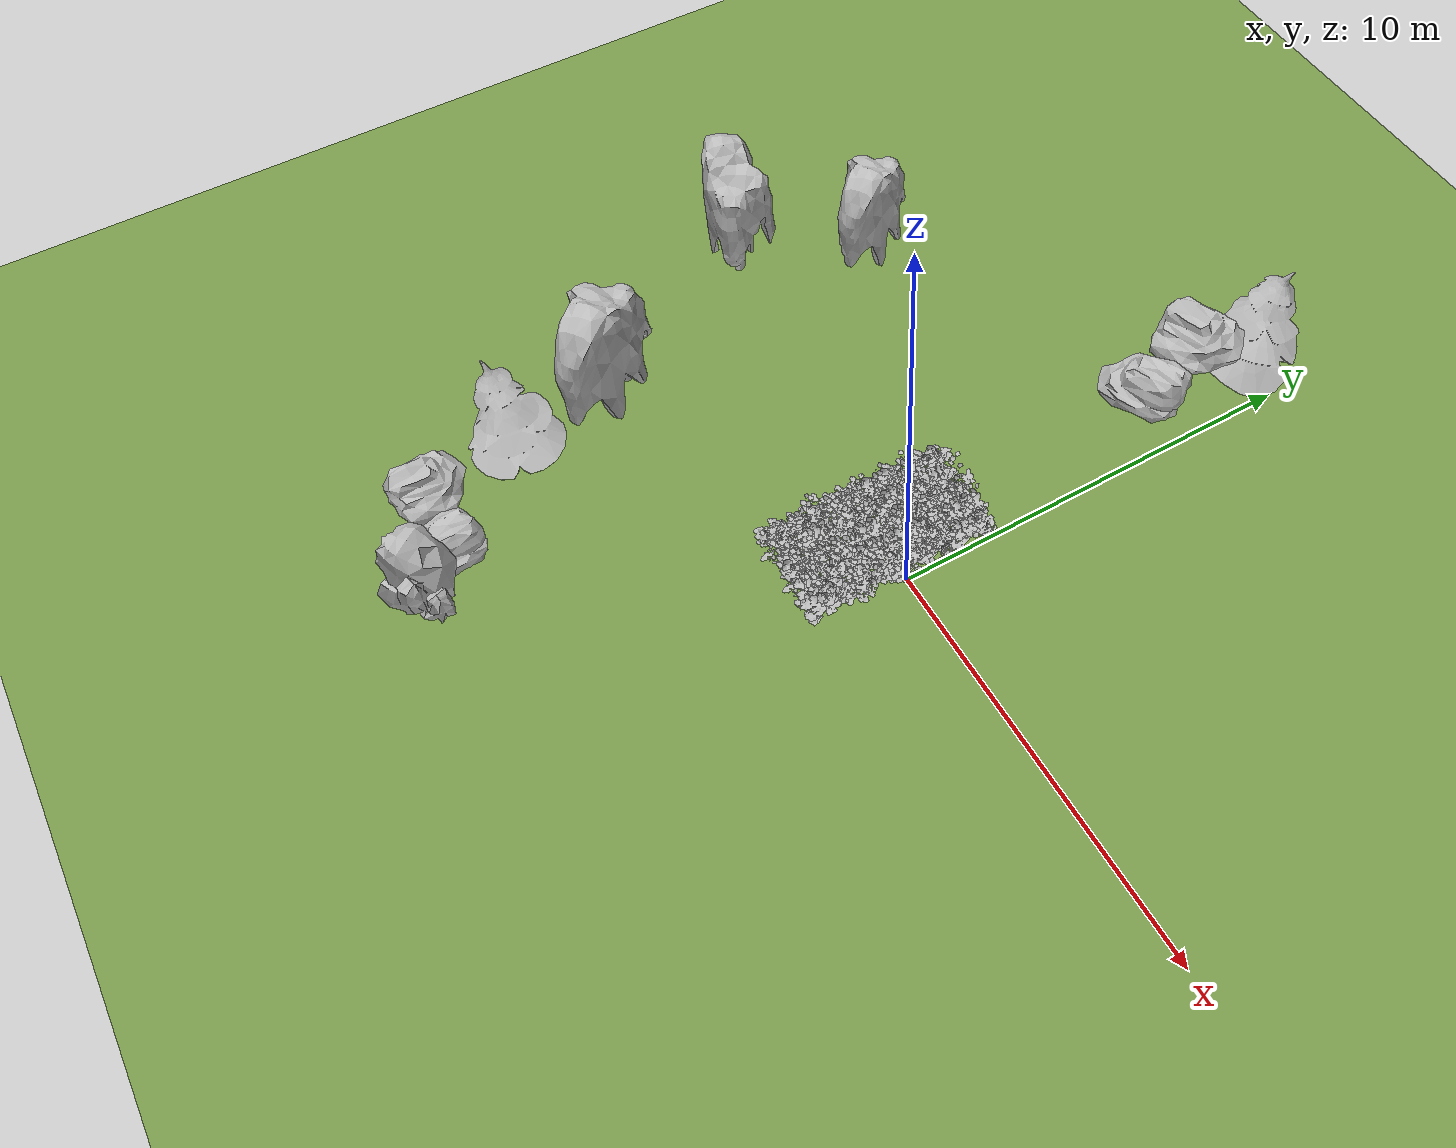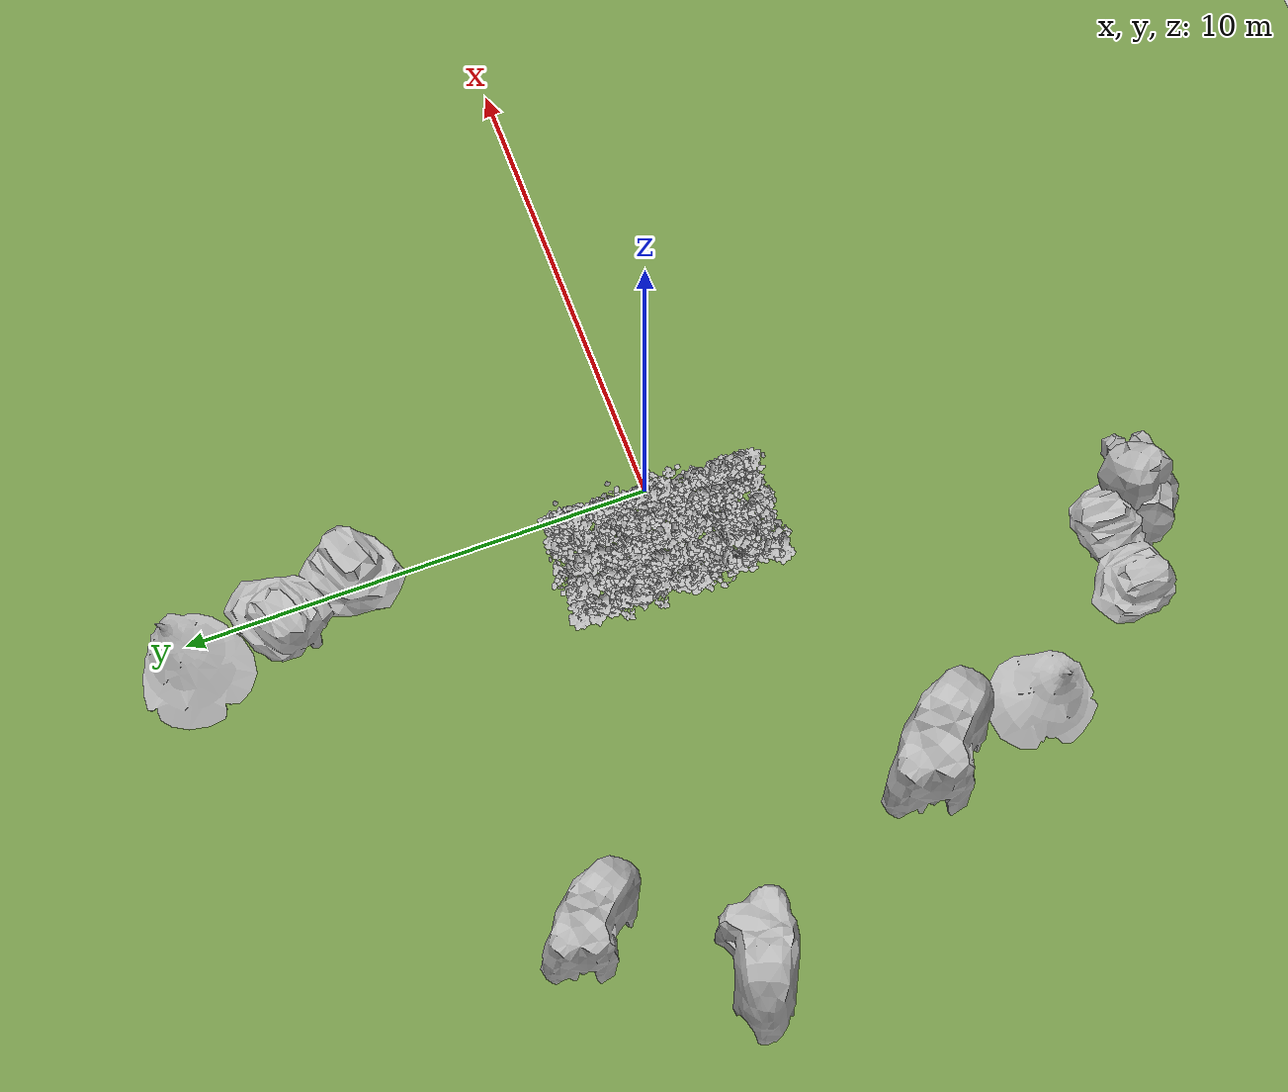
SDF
<sdf version="1.9">
 <world name="soybean_farm">
  <model name="grass_ground">
   <static>true</static>
   <link name="link">
    <collision name="collision">
     <geometry><plane><normal>0 0 1</normal><size>40.0 40.0</size></plane></geometry>
    </collision>
    <visual name="visual">
     <geometry><plane><normal>0 0 1</normal><size>40.0 40.0</size></plane></geometry>
     <material>
      <ambient>0.25 0.35 0.18 1</ambient>
      <diffuse>0.45 0.58 0.28 1</diffuse>
      <specular>0.05 0.05 0.05 1</specular>
      <pbr>
       <metal>
        <albedo_map>ground/grass_color_1k.jpg</albedo_map>
        <roughness>0.95</roughness>
        <metalness>0.0</metalness>
       </metal>
      </pbr>
     </material>
    </visual>
   </link>
  </model>
  <model name="tree_01">
   <static>true</static>
   <pose>-4.73 -9.23 0 1.5708 0 4.90</pose>
   <link name="base_link">
    <visual name="visual">
     <geometry>
      <mesh><uri>models/tree_birch/meshes/tree_birch.obj</uri><scale>0.93 0.93 0.93</scale></mesh>
     </geometry>
    </visual>
   </link>
  </model>
  <model name="tree_03">
   <static>true</static>
   <pose>-7.45 -5.83 0 1.5708 0 1.24</pose>
   <link name="base_link">
    <visual name="visual">
     <geometry>
      <mesh><uri>models/tree_pine/meshes/tree_pine.obj</uri><scale>1.14 1.14 1.14</scale></mesh>
     </geometry>
    </visual>
   </link>
  </model>
  <model name="tree_07">
   <static>true</static>
   <pose>-9.03 4.89 0 1.5708 0 3.72</pose>
   <link name="base_link">
    <visual name="visual">
     <geometry>
      <mesh><uri>models/tree_willow/meshes/tree_willow.obj</uri><scale>1.04 1.04 1.04</scale></mesh>
     </geometry>
    </visual>
   </link>
  </model>
  <model name="tree_08">
   <static>true</static>
   <pose>-0.82 7.49 0 1.5708 0 0.36</pose>
   <link name="base_link">
    <visual name="visual">
     <geometry>
      <mesh><uri>models/tree_common/meshes/tree_common.obj</uri><scale>1.23 1.23 1.23</scale></mesh>
     </geometry>
    </visual>
   </link>
  </model>
  <model name="tree_11">
   <static>true</static>
   <pose>-10.14 1.18 0 1.5708 0 1.18</pose>
   <link name="base_link">
    <visual name="visual">
     <geometry>
      <mesh><uri>models/tree_willow/meshes/tree_willow.obj</uri><scale>1.14 1.14 1.14</scale></mesh>
     </geometry>
    </visual>
   </link>
  </model>
  <model name="tree_12">
   <static>true</static>
   <pose>-0.84 10.08 0 1.5708 0 5.10</pose>
   <link name="base_link">
    <visual name="visual">
     <geometry>
      <mesh><uri>models/tree_pine/meshes/tree_pine.obj</uri><scale>1.23 1.23 1.23</scale></mesh>
     </geometry>
    </visual>
   </link>
  </model>
  <model name="tree_13">
   <static>true</static>
   <pose>-5.57 -8.27 0 1.5708 0 1.56</pose>
   <link name="base_link">
    <visual name="visual">
     <geometry>
      <mesh><uri>models/tree_common/meshes/tree_common.obj</uri><scale>1.08 1.08 1.08</scale></mesh>
     </geometry>
    </visual>
   </link>
  </model>
  <model name="tree_15">
   <static>true</static>
   <pose>-8.14 -2.67 0 1.5708 0 3.76</pose>
   <link name="base_link">
    <visual name="visual">
     <geometry>
      <mesh><uri>models/tree_willow/meshes/tree_willow.obj</uri><scale>1.22 1.22 1.22</scale></mesh>
     </geometry>
    </visual>
   </link>
  </model>
  <model name="soybean_000">
   <static>true</static>
   <pose>-2.278 -2.188 0 0 0 1.402</pose>
   <link name="base_link">
    <visual name="visual">
     <geometry><mesh><uri>models/soybean_plant/meshes/soybean_40d.obj</uri></mesh></geometry>
    </visual>
   </link>
  </model>
  <model name="soybean_001">
   <static>true</static>
   <pose>-2.239 -2.001 0 0 0 0.546</pose>
   <link name="base_link">
    <visual name="visual">
     <geometry><mesh><uri>models/soybean_plant/meshes/soybean_50d.obj</uri></mesh></geometry>
    </visual>
   </link>
  </model>
  <model name="soybean_002">
   <static>true</static>
   <pose>-2.278 -1.892 0 0 0 3.175</pose>
   <link name="base_link">
    <visual name="visual">
     <geometry><mesh><uri>models/soybean_plant/meshes/soybean_40d.obj</uri></mesh></geometry>
    </visual>
   </link>
  </model>
  <model name="soybean_003">
   <static>true</static>
   <pose>-2.268 -1.716 0 0 0 3.424</pose>
   <link name="base_link">
    <visual name="visual">
     <geometry><mesh><uri>models/soybean_plant/meshes/soybean_30d.obj</uri></mesh></geometry>
    </visual>
   </link>
  </model>
  <model name="soybean_004">
   <static>true</static>
   <pose>-2.245 -1.556 0 0 0 0.041</pose>
   <link name="base_link">
    <visual name="visual">
     <geometry><mesh><uri>models/soybean_plant/meshes/soybean_40d.obj</uri></mesh></geometry>
    </visual>
   </link>
  </model>
  <model name="soybean_005">
   <static>true</static>
   <pose>-2.238 -1.435 0 0 0 0.977</pose>
   <link name="base_link">
    <visual name="visual">
     <geometry><mesh><uri>models/soybean_plant/meshes/soybean_50d.obj</uri></mesh></geometry>
    </visual>
   </link>
  </model>
  <model name="soybean_006">
   <static>true</static>
   <pose>-2.260 -1.299 0 0 0 0.608</pose>
   <link name="base_link">
    <visual name="visual">
     <geometry><mesh><uri>models/soybean_plant/meshes/soybean_50d.obj</uri></mesh></geometry>
    </visual>
   </link>
  </model>
  <model name="soybean_007">
   <static>true</static>
   <pose>-2.244 -1.107 0 0 0 4.585</pose>
   <link name="base_link">
    <visual name="visual">
     <geometry><mesh><uri>models/soybean_plant/meshes/soybean_50d.obj</uri></mesh></geometry>
    </visual>
   </link>
  </model>
  <model name="soybean_008">
   <static>true</static>
   <pose>-2.222 -0.982 0 0 0 3.469</pose>
   <link name="base_link">
    <visual name="visual">
     <geometry><mesh><uri>models/soybean_plant/meshes/soybean_40d.obj</uri></mesh></geometry>
    </visual>
   </link>
  </model>
  <model name="soybean_009">
   <static>true</static>
   <pose>-2.243 -0.803 0 0 0 3.628</pose>
   <link name="base_link">
    <visual name="visual">
     <geometry><mesh><uri>models/soybean_plant/meshes/soybean_50d.obj</uri></mesh></geometry>
    </visual>
   </link>
  </model>
  <model name="soybean_010">
   <static>true</static>
   <pose>-2.277 -0.691 0 0 0 1.818</pose>
   <link name="base_link">
    <visual name="visual">
     <geometry><mesh><uri>models/soybean_plant/meshes/soybean_50d.obj</uri></mesh></geometry>
    </visual>
   </link>
  </model>
  <model name="soybean_011">
   <static>true</static>
   <pose>-2.266 -0.549 0 0 0 1.747</pose>
   <link name="base_link">
    <visual name="visual">
     <geometry><mesh><uri>models/soybean_plant/meshes/soybean_30d.obj</uri></mesh></geometry>
    </visual>
   </link>
  </model>
  <model name="soybean_012">
   <static>true</static>
   <pose>-2.258 -0.383 0 0 0 1.316</pose>
   <link name="base_link">
    <visual name="visual">
     <geometry><mesh><uri>models/soybean_plant/meshes/soybean_40d.obj</uri></mesh></geometry>
    </visual>
   </link>
  </model>
  <model name="soybean_013">
   <static>true</static>
   <pose>-2.224 -0.216 0 0 0 3.827</pose>
   <link name="base_link">
    <visual name="visual">
     <geometry><mesh><uri>models/soybean_plant/meshes/soybean_40d.obj</uri></mesh></geometry>
    </visual>
   </link>
  </model>
  <model name="soybean_014">
   <static>true</static>
   <pose>-2.236 -0.095 0 0 0 2.384</pose>
   <link name="base_link">
    <visual name="visual">
     <geometry><mesh><uri>models/soybean_plant/meshes/soybean_40d.obj</uri></mesh></geometry>
    </visual>
   </link>
  </model>
  <model name="soybean_015">
   <static>true</static>
   <pose>-2.242 0.078 0 0 0 4.302</pose>
   <link name="base_link">
    <visual name="visual">
     <geometry><mesh><uri>models/soybean_plant/meshes/soybean_50d.obj</uri></mesh></geometry>
    </visual>
   </link>
  </model>
  <model name="soybean_016">
   <static>true</static>
   <pose>-2.233 0.209 0 0 0 0.202</pose>
   <link name="base_link">
    <visual name="visual">
     <geometry><mesh><uri>models/soybean_plant/meshes/soybean_50d.obj</uri></mesh></geometry>
    </visual>
   </link>
  </model>
  <model name="soybean_017">
   <static>true</static>
   <pose>-2.264 0.358 0 0 0 5.924</pose>
   <link name="base_link">
    <visual name="visual">
     <geometry><mesh><uri>models/soybean_plant/meshes/soybean_40d.obj</uri></mesh></geometry>
    </visual>
   </link>
  </model>
  <model name="soybean_018">
   <static>true</static>
   <pose>-2.261 0.534 0 0 0 2.486</pose>
   <link name="base_link">
    <visual name="visual">
     <geometry><mesh><uri>models/soybean_plant/meshes/soybean_50d.obj</uri></mesh></geometry>
    </visual>
   </link>
  </model>
  <model name="soybean_019">
   <static>true</static>
   <pose>-2.252 0.661 0 0 0 1.550</pose>
   <link name="base_link">
    <visual name="visual">
     <geometry><mesh><uri>models/soybean_plant/meshes/soybean_50d.obj</uri></mesh></geometry>
    </visual>
   </link>
  </model>
  <model name="soybean_020">
   <static>true</static>
   <pose>-2.264 0.830 0 0 0 5.641</pose>
   <link name="base_link">
    <visual name="visual">
     <geometry><mesh><uri>models/soybean_plant/meshes/soybean_40d.obj</uri></mesh></geometry>
    </visual>
   </link>
  </model>
  <model name="soybean_021">
   <static>true</static>
   <pose>-2.267 1.005 0 0 0 3.201</pose>
   <link name="base_link">
    <visual name="visual">
     <geometry><mesh><uri>models/soybean_plant/meshes/soybean_40d.obj</uri></mesh></geometry>
    </visual>
   </link>
  </model>
  <model name="soybean_022">
   <static>true</static>
   <pose>-2.277 1.102 0 0 0 3.942</pose>
   <link name="base_link">
    <visual name="visual">
     <geometry><mesh><uri>models/soybean_plant/meshes/soybean_30d.obj</uri></mesh></geometry>
    </visual>
   </link>
  </model>
  <model name="soybean_023">
   <static>true</static>
   <pose>-2.255 1.249 0 0 0 2.398</pose>
   <link name="base_link">
    <visual name="visual">
     <geometry><mesh><uri>models/soybean_plant/meshes/soybean_50d.obj</uri></mesh></geometry>
    </visual>
   </link>
  </model>
  <model name="soybean_024">
   <static>true</static>
   <pose>-2.248 1.453 0 0 0 5.408</pose>
   <link name="base_link">
    <visual name="visual">
     <geometry><mesh><uri>models/soybean_plant/meshes/soybean_50d.obj</uri></mesh></geometry>
    </visual>
   </link>
  </model>
  <model name="soybean_025">
   <static>true</static>
   <pose>-2.237 1.586 0 0 0 3.374</pose>
   <link name="base_link">
    <visual name="visual">
     <geometry><mesh><uri>models/soybean_plant/meshes/soybean_30d.obj</uri></mesh></geometry>
    </visual>
   </link>
  </model>
  <model name="soybean_026">
   <static>true</static>
   <pose>-2.242 1.702 0 0 0 2.732</pose>
   <link name="base_link">
    <visual name="visual">
     <geometry><mesh><uri>models/soybean_plant/meshes/soybean_40d.obj</uri></mesh></geometry>
    </visual>
   </link>
  </model>
  <model name="soybean_027">
   <static>true</static>
   <pose>-2.223 1.898 0 0 0 1.655</pose>
   <link name="base_link">
    <visual name="visual">
     <geometry><mesh><uri>models/soybean_plant/meshes/soybean_40d.obj</uri></mesh></geometry>
    </visual>
   </link>
  </model>
  <model name="soybean_028">
   <static>true</static>
   <pose>-2.269 2.050 0 0 0 5.470</pose>
   <link name="base_link">
    <visual name="visual">
     <geometry><mesh><uri>models/soybean_plant/meshes/soybean_40d.obj</uri></mesh></geometry>
    </visual>
   </link>
  </model>
  <model name="soybean_029">
   <static>true</static>
   <pose>-2.242 2.182 0 0 0 0.960</pose>
   <link name="base_link">
    <visual name="visual">
     <geometry><mesh><uri>models/soybean_plant/meshes/soybean_40d.obj</uri></mesh></geometry>
    </visual>
   </link>
  </model>
  <model name="soybean_030">
   <static>true</static>
   <pose>-1.748 -2.158 0 0 0 3.332</pose>
   <link name="base_link">
    <visual name="visual">
     <geometry><mesh><uri>models/soybean_plant/meshes/soybean_50d.obj</uri></mesh></geometry>
    </visual>
   </link>
  </model>
  <model name="soybean_031">
   <static>true</static>
   <pose>-1.761 -2.054 0 0 0 5.838</pose>
   <link name="base_link">
    <visual name="visual">
     <geometry><mesh><uri>models/soybean_plant/meshes/soybean_30d.obj</uri></mesh></geometry>
    </visual>
   </link>
  </model>
  <model name="soybean_032">
   <static>true</static>
   <pose>-1.730 -1.887 0 0 0 0.364</pose>
   <link name="base_link">
    <visual name="visual">
     <geometry><mesh><uri>models/soybean_plant/meshes/soybean_50d.obj</uri></mesh></geometry>
    </visual>
   </link>
  </model>
  <model name="soybean_033">
   <static>true</static>
   <pose>-1.723 -1.750 0 0 0 3.054</pose>
   <link name="base_link">
    <visual name="visual">
     <geometry><mesh><uri>models/soybean_plant/meshes/soybean_50d.obj</uri></mesh></geometry>
    </visual>
   </link>
  </model>
  <model name="soybean_034">
   <static>true</static>
   <pose>-1.734 -1.559 0 0 0 0.807</pose>
   <link name="base_link">
    <visual name="visual">
     <geometry><mesh><uri>models/soybean_plant/meshes/soybean_30d.obj</uri></mesh></geometry>
    </visual>
   </link>
  </model>
  <model name="soybean_035">
   <static>true</static>
   <pose>-1.747 -1.439 0 0 0 5.482</pose>
   <link name="base_link">
    <visual name="visual">
     <geometry><mesh><uri>models/soybean_plant/meshes/soybean_40d.obj</uri></mesh></geometry>
    </visual>
   </link>
  </model>
  <model name="soybean_036">
   <static>true</static>
   <pose>-1.767 -1.273 0 0 0 4.586</pose>
   <link name="base_link">
    <visual name="visual">
     <geometry><mesh><uri>models/soybean_plant/meshes/soybean_40d.obj</uri></mesh></geometry>
    </visual>
   </link>
  </model>
  <model name="soybean_037">
   <static>true</static>
   <pose>-1.761 -1.095 0 0 0 4.083</pose>
   <link name="base_link">
    <visual name="visual">
     <geometry><mesh><uri>models/soybean_plant/meshes/soybean_40d.obj</uri></mesh></geometry>
    </visual>
   </link>
  </model>
  <model name="soybean_038">
   <static>true</static>
   <pose>-1.749 -0.998 0 0 0 1.412</pose>
   <link name="base_link">
    <visual name="visual">
     <geometry><mesh><uri>models/soybean_plant/meshes/soybean_40d.obj</uri></mesh></geometry>
    </visual>
   </link>
  </model>
  <model name="soybean_039">
   <static>true</static>
   <pose>-1.745 -0.841 0 0 0 1.384</pose>
   <link name="base_link">
    <visual name="visual">
     <geometry><mesh><uri>models/soybean_plant/meshes/soybean_40d.obj</uri></mesh></geometry>
    </visual>
   </link>
  </model>
  <model name="soybean_040">
   <static>true</static>
   <pose>-1.742 -0.691 0 0 0 5.689</pose>
   <link name="base_link">
    <visual name="visual">
     <geometry><mesh><uri>models/soybean_plant/meshes/soybean_30d.obj</uri></mesh></geometry>
    </visual>
   </link>
  </model>
  <model name="soybean_041">
   <static>true</static>
   <pose>-1.776 -0.541 0 0 0 4.203</pose>
   <link name="base_link">
    <visual name="visual">
     <geometry><mesh><uri>models/soybean_plant/meshes/soybean_50d.obj</uri></mesh></geometry>
    </visual>
   </link>
  </model>
  <model name="soybean_042">
   <static>true</static>
   <pose>-1.772 -0.349 0 0 0 3.588</pose>
   <link name="base_link">
    <visual name="visual">
     <geometry><mesh><uri>models/soybean_plant/meshes/soybean_40d.obj</uri></mesh></geometry>
    </visual>
   </link>
  </model>
  <model name="soybean_043">
   <static>true</static>
   <pose>-1.733 -0.207 0 0 0 1.196</pose>
   <link name="base_link">
    <visual name="visual">
     <geometry><mesh><uri>models/soybean_plant/meshes/soybean_40d.obj</uri></mesh></geometry>
    </visual>
   </link>
  </model>
  <model name="soybean_044">
   <static>true</static>
   <pose>-1.754 -0.080 0 0 0 2.934</pose>
   <link name="base_link">
    <visual name="visual">
     <geometry><mesh><uri>models/soybean_plant/meshes/soybean_30d.obj</uri></mesh></geometry>
    </visual>
   </link>
  </model>
  <model name="soybean_045">
   <static>true</static>
   <pose>-1.740 0.104 0 0 0 0.618</pose>
   <link name="base_link">
    <visual name="visual">
     <geometry><mesh><uri>models/soybean_plant/meshes/soybean_50d.obj</uri></mesh></geometry>
    </visual>
   </link>
  </model>
  <model name="soybean_046">
   <static>true</static>
   <pose>-1.760 0.247 0 0 0 1.562</pose>
   <link name="base_link">
    <visual name="visual">
     <geometry><mesh><uri>models/soybean_plant/meshes/soybean_40d.obj</uri></mesh></geometry>
    </visual>
   </link>
  </model>
  <model name="soybean_047">
   <static>true</static>
   <pose>-1.753 0.370 0 0 0 1.750</pose>
   <link name="base_link">
    <visual name="visual">
     <geometry><mesh><uri>models/soybean_plant/meshes/soybean_40d.obj</uri></mesh></geometry>
    </visual>
   </link>
  </model>
  <model name="soybean_048">
   <static>true</static>
   <pose>-1.725 0.522 0 0 0 5.412</pose>
   <link name="base_link">
    <visual name="visual">
     <geometry><mesh><uri>models/soybean_plant/meshes/soybean_40d.obj</uri></mesh></geometry>
    </visual>
   </link>
  </model>
  <model name="soybean_049">
   <static>true</static>
   <pose>-1.777 0.705 0 0 0 5.253</pose>
   <link name="base_link">
    <visual name="visual">
     <geometry><mesh><uri>models/soybean_plant/meshes/soybean_40d.obj</uri></mesh></geometry>
    </visual>
   </link>
  </model>
  <model name="soybean_050">
   <static>true</static>
   <pose>-1.724 0.846 0 0 0 1.045</pose>
   <link name="base_link">
    <visual name="visual">
     <geometry><mesh><uri>models/soybean_plant/meshes/soybean_50d.obj</uri></mesh></geometry>
    </visual>
   </link>
  </model>
  <model name="soybean_051">
   <static>true</static>
   <pose>-1.767 0.969 0 0 0 0.368</pose>
   <link name="base_link">
    <visual name="visual">
     <geometry><mesh><uri>models/soybean_plant/meshes/soybean_40d.obj</uri></mesh></geometry>
    </visual>
   </link>
  </model>
  <model name="soybean_052">
   <static>true</static>
   <pose>-1.721 1.111 0 0 0 4.926</pose>
   <link name="base_link">
    <visual name="visual">
     <geometry><mesh><uri>models/soybean_plant/meshes/soybean_40d.obj</uri></mesh></geometry>
    </visual>
   </link>
  </model>
  <model name="soybean_053">
   <static>true</static>
   <pose>-1.755 1.302 0 0 0 6.254</pose>
   <link name="base_link">
    <visual name="visual">
     <geometry><mesh><uri>models/soybean_plant/meshes/soybean_40d.obj</uri></mesh></geometry>
    </visual>
   </link>
  </model>
  <model name="soybean_054">
   <static>true</static>
   <pose>-1.737 1.404 0 0 0 1.864</pose>
   <link name="base_link">
    <visual name="visual">
     <geometry><mesh><uri>models/soybean_plant/meshes/soybean_40d.obj</uri></mesh></geometry>
    </visual>
   </link>
  </model>
  <model name="soybean_055">
   <static>true</static>
   <pose>-1.745 1.578 0 0 0 4.700</pose>
   <link name="base_link">
    <visual name="visual">
     <geometry><mesh><uri>models/soybean_plant/meshes/soybean_50d.obj</uri></mesh></geometry>
    </visual>
   </link>
  </model>
  <model name="soybean_056">
   <static>true</static>
   <pose>-1.745 1.725 0 0 0 5.358</pose>
   <link name="base_link">
    <visual name="visual">
     <geometry><mesh><uri>models/soybean_plant/meshes/soybean_30d.obj</uri></mesh></geometry>
    </visual>
   </link>
  </model>
  <model name="soybean_057">
   <static>true</static>
   <pose>-1.722 1.850 0 0 0 1.168</pose>
   <link name="base_link">
    <visual name="visual">
     <geometry><mesh><uri>models/soybean_plant/meshes/soybean_40d.obj</uri></mesh></geometry>
    </visual>
   </link>
  </model>
  <model name="soybean_058">
   <static>true</static>
   <pose>-1.739 2.009 0 0 0 0.753</pose>
   <link name="base_link">
    <visual name="visual">
     <geometry><mesh><uri>models/soybean_plant/meshes/soybean_40d.obj</uri></mesh></geometry>
    </visual>
   </link>
  </model>
  <model name="soybean_059">
   <static>true</static>
   <pose>-1.765 2.181 0 0 0 3.892</pose>
   <link name="base_link">
    <visual name="visual">
     <geometry><mesh><uri>models/soybean_plant/meshes/soybean_50d.obj</uri></mesh></geometry>
    </visual>
   </link>
  </model>
  <model name="soybean_060">
   <static>true</static>
   <pose>-1.245 -2.174 0 0 0 5.873</pose>
   <link name="base_link">
    <visual name="visual">
     <geometry><mesh><uri>models/soybean_plant/meshes/soybean_40d.obj</uri></mesh></geometry>
    </visual>
   </link>
  </model>
  <model name="soybean_061">
   <static>true</static>
   <pose>-1.237 -2.041 0 0 0 2.487</pose>
   <link name="base_link">
    <visual name="visual">
     <geometry><mesh><uri>models/soybean_plant/meshes/soybean_40d.obj</uri></mesh></geometry>
    </visual>
   </link>
  </model>
  <model name="soybean_062">
   <static>true</static>
   <pose>-1.262 -1.886 0 0 0 4.724</pose>
   <link name="base_link">
    <visual name="visual">
     <geometry><mesh><uri>models/soybean_plant/meshes/soybean_50d.obj</uri></mesh></geometry>
    </visual>
   </link>
  </model>
  <model name="soybean_063">
   <static>true</static>
   <pose>-1.253 -1.695 0 0 0 6.259</pose>
   <link name="base_link">
    <visual name="visual">
     <geometry><mesh><uri>models/soybean_plant/meshes/soybean_30d.obj</uri></mesh></geometry>
    </visual>
   </link>
  </model>
  <model name="soybean_064">
   <static>true</static>
   <pose>-1.267 -1.589 0 0 0 5.864</pose>
   <link name="base_link">
    <visual name="visual">
     <geometry><mesh><uri>models/soybean_plant/meshes/soybean_30d.obj</uri></mesh></geometry>
    </visual>
   </link>
  </model>
  <model name="soybean_065">
   <static>true</static>
   <pose>-1.227 -1.433 0 0 0 0.991</pose>
   <link name="base_link">
    <visual name="visual">
     <geometry><mesh><uri>models/soybean_plant/meshes/soybean_50d.obj</uri></mesh></geometry>
    </visual>
   </link>
  </model>
  <model name="soybean_066">
   <static>true</static>
   <pose>-1.238 -1.268 0 0 0 6.203</pose>
   <link name="base_link">
    <visual name="visual">
     <geometry><mesh><uri>models/soybean_plant/meshes/soybean_50d.obj</uri></mesh></geometry>
    </visual>
   </link>
  </model>
  <model name="soybean_067">
   <static>true</static>
   <pose>-1.280 -1.106 0 0 0 1.881</pose>
   <link name="base_link">
    <visual name="visual">
     <geometry><mesh><uri>models/soybean_plant/meshes/soybean_50d.obj</uri></mesh></geometry>
    </visual>
   </link>
  </model>
  <model name="soybean_068">
   <static>true</static>
   <pose>-1.224 -0.997 0 0 0 0.725</pose>
   <link name="base_link">
    <visual name="visual">
     <geometry><mesh><uri>models/soybean_plant/meshes/soybean_50d.obj</uri></mesh></geometry>
    </visual>
   </link>
  </model>
  <model name="soybean_069">
   <static>true</static>
   <pose>-1.247 -0.839 0 0 0 3.800</pose>
   <link name="base_link">
    <visual name="visual">
     <geometry><mesh><uri>models/soybean_plant/meshes/soybean_30d.obj</uri></mesh></geometry>
    </visual>
   </link>
  </model>
  <model name="soybean_070">
   <static>true</static>
   <pose>-1.268 -0.667 0 0 0 1.659</pose>
   <link name="base_link">
    <visual name="visual">
     <geometry><mesh><uri>models/soybean_plant/meshes/soybean_50d.obj</uri></mesh></geometry>
    </visual>
   </link>
  </model>
  <model name="soybean_071">
   <static>true</static>
   <pose>-1.226 -0.504 0 0 0 0.580</pose>
   <link name="base_link">
    <visual name="visual">
     <geometry><mesh><uri>models/soybean_plant/meshes/soybean_40d.obj</uri></mesh></geometry>
    </visual>
   </link>
  </model>
  <model name="soybean_072">
   <static>true</static>
   <pose>-1.263 -0.405 0 0 0 4.845</pose>
   <link name="base_link">
    <visual name="visual">
     <geometry><mesh><uri>models/soybean_plant/meshes/soybean_40d.obj</uri></mesh></geometry>
    </visual>
   </link>
  </model>
  <model name="soybean_073">
   <static>true</static>
   <pose>-1.264 -0.211 0 0 0 3.466</pose>
   <link name="base_link">
    <visual name="visual">
     <geometry><mesh><uri>models/soybean_plant/meshes/soybean_40d.obj</uri></mesh></geometry>
    </visual>
   </link>
  </model>
  <model name="soybean_074">
   <static>true</static>
   <pose>-1.279 -0.100 0 0 0 5.549</pose>
   <link name="base_link">
    <visual name="visual">
     <geometry><mesh><uri>models/soybean_plant/meshes/soybean_40d.obj</uri></mesh></geometry>
    </visual>
   </link>
  </model>
  <model name="soybean_075">
   <static>true</static>
   <pose>-1.247 0.095 0 0 0 3.660</pose>
   <link name="base_link">
    <visual name="visual">
     <geometry><mesh><uri>models/soybean_plant/meshes/soybean_50d.obj</uri></mesh></geometry>
    </visual>
   </link>
  </model>
  <model name="soybean_076">
   <static>true</static>
   <pose>-1.272 0.213 0 0 0 5.648</pose>
   <link name="base_link">
    <visual name="visual">
     <geometry><mesh><uri>models/soybean_plant/meshes/soybean_30d.obj</uri></mesh></geometry>
    </visual>
   </link>
  </model>
  <model name="soybean_077">
   <static>true</static>
   <pose>-1.228 0.399 0 0 0 1.320</pose>
   <link name="base_link">
    <visual name="visual">
     <geometry><mesh><uri>models/soybean_plant/meshes/soybean_50d.obj</uri></mesh></geometry>
    </visual>
   </link>
  </model>
  <model name="soybean_078">
   <static>true</static>
   <pose>-1.274 0.542 0 0 0 5.555</pose>
   <link name="base_link">
    <visual name="visual">
     <geometry><mesh><uri>models/soybean_plant/meshes/soybean_40d.obj</uri></mesh></geometry>
    </visual>
   </link>
  </model>
  <model name="soybean_079">
   <static>true</static>
   <pose>-1.243 0.654 0 0 0 5.843</pose>
   <link name="base_link">
    <visual name="visual">
     <geometry><mesh><uri>models/soybean_plant/meshes/soybean_40d.obj</uri></mesh></geometry>
    </visual>
   </link>
  </model>
  <model name="soybean_080">
   <static>true</static>
   <pose>-1.221 0.844 0 0 0 5.538</pose>
   <link name="base_link">
    <visual name="visual">
     <geometry><mesh><uri>models/soybean_plant/meshes/soybean_50d.obj</uri></mesh></geometry>
    </visual>
   </link>
  </model>
  <model name="soybean_081">
   <static>true</static>
   <pose>-1.236 0.965 0 0 0 5.849</pose>
   <link name="base_link">
    <visual name="visual">
     <geometry><mesh><uri>models/soybean_plant/meshes/soybean_30d.obj</uri></mesh></geometry>
    </visual>
   </link>
  </model>
  <model name="soybean_082">
   <static>true</static>
   <pose>-1.228 1.144 0 0 0 1.676</pose>
   <link name="base_link">
    <visual name="visual">
     <geometry><mesh><uri>models/soybean_plant/meshes/soybean_50d.obj</uri></mesh></geometry>
    </visual>
   </link>
  </model>
  <model name="soybean_083">
   <static>true</static>
   <pose>-1.274 1.297 0 0 0 5.395</pose>
   <link name="base_link">
    <visual name="visual">
     <geometry><mesh><uri>models/soybean_plant/meshes/soybean_50d.obj</uri></mesh></geometry>
    </visual>
   </link>
  </model>
  <model name="soybean_084">
   <static>true</static>
   <pose>-1.231 1.423 0 0 0 1.918</pose>
   <link name="base_link">
    <visual name="visual">
     <geometry><mesh><uri>models/soybean_plant/meshes/soybean_40d.obj</uri></mesh></geometry>
    </visual>
   </link>
  </model>
  <model name="soybean_085">
   <static>true</static>
   <pose>-1.266 1.546 0 0 0 1.213</pose>
   <link name="base_link">
    <visual name="visual">
     <geometry><mesh><uri>models/soybean_plant/meshes/soybean_50d.obj</uri></mesh></geometry>
    </visual>
   </link>
  </model>
  <model name="soybean_086">
   <static>true</static>
   <pose>-1.228 1.753 0 0 0 1.754</pose>
   <link name="base_link">
    <visual name="visual">
     <geometry><mesh><uri>models/soybean_plant/meshes/soybean_40d.obj</uri></mesh></geometry>
    </visual>
   </link>
  </model>
  <model name="soybean_087">
   <static>true</static>
   <pose>-1.256 1.904 0 0 0 3.369</pose>
   <link name="base_link">
    <visual name="visual">
     <geometry><mesh><uri>models/soybean_plant/meshes/soybean_40d.obj</uri></mesh></geometry>
    </visual>
   </link>
  </model>
  <model name="soybean_088">
   <static>true</static>
   <pose>-1.273 2.053 0 0 0 1.122</pose>
   <link name="base_link">
    <visual name="visual">
     <geometry><mesh><uri>models/soybean_plant/meshes/soybean_50d.obj</uri></mesh></geometry>
    </visual>
   </link>
  </model>
  <model name="soybean_089">
   <static>true</static>
   <pose>-1.264 2.152 0 0 0 2.730</pose>
   <link name="base_link">
    <visual name="visual">
     <geometry><mesh><uri>models/soybean_plant/meshes/soybean_50d.obj</uri></mesh></geometry>
    </visual>
   </link>
  </model>
  <model name="soybean_090">
   <static>true</static>
   <pose>-0.761 -2.169 0 0 0 3.213</pose>
   <link name="base_link">
    <visual name="visual">
     <geometry><mesh><uri>models/soybean_plant/meshes/soybean_50d.obj</uri></mesh></geometry>
    </visual>
   </link>
  </model>
  <model name="soybean_091">
   <static>true</static>
   <pose>-0.745 -2.040 0 0 0 4.453</pose>
   <link name="base_link">
    <visual name="visual">
     <geometry><mesh><uri>models/soybean_plant/meshes/soybean_40d.obj</uri></mesh></geometry>
    </visual>
   </link>
  </model>
  <model name="soybean_092">
   <static>true</static>
   <pose>-0.724 -1.873 0 0 0 4.520</pose>
   <link name="base_link">
    <visual name="visual">
     <geometry><mesh><uri>models/soybean_plant/meshes/soybean_30d.obj</uri></mesh></geometry>
    </visual>
   </link>
  </model>
  <model name="soybean_093">
   <static>true</static>
   <pose>-0.740 -1.733 0 0 0 0.440</pose>
   <link name="base_link">
    <visual name="visual">
     <geometry><mesh><uri>models/soybean_plant/meshes/soybean_50d.obj</uri></mesh></geometry>
    </visual>
   </link>
  </model>
  <model name="soybean_094">
   <static>true</static>
   <pose>-0.760 -1.586 0 0 0 5.328</pose>
   <link name="base_link">
    <visual name="visual">
     <geometry><mesh><uri>models/soybean_plant/meshes/soybean_50d.obj</uri></mesh></geometry>
    </visual>
   </link>
  </model>
  <model name="soybean_095">
   <static>true</static>
   <pose>-0.762 -1.436 0 0 0 2.566</pose>
   <link name="base_link">
    <visual name="visual">
     <geometry><mesh><uri>models/soybean_plant/meshes/soybean_50d.obj</uri></mesh></geometry>
    </visual>
   </link>
  </model>
  <model name="soybean_096">
   <static>true</static>
   <pose>-0.762 -1.297 0 0 0 2.642</pose>
   <link name="base_link">
    <visual name="visual">
     <geometry><mesh><uri>models/soybean_plant/meshes/soybean_40d.obj</uri></mesh></geometry>
    </visual>
   </link>
  </model>
  <model name="soybean_097">
   <static>true</static>
   <pose>-0.739 -1.101 0 0 0 3.867</pose>
   <link name="base_link">
    <visual name="visual">
     <geometry><mesh><uri>models/soybean_plant/meshes/soybean_50d.obj</uri></mesh></geometry>
    </visual>
   </link>
  </model>
  <model name="soybean_098">
   <static>true</static>
   <pose>-0.747 -1.005 0 0 0 1.803</pose>
   <link name="base_link">
    <visual name="visual">
     <geometry><mesh><uri>models/soybean_plant/meshes/soybean_40d.obj</uri></mesh></geometry>
    </visual>
   </link>
  </model>
  <model name="soybean_099">
   <static>true</static>
   <pose>-0.745 -0.816 0 0 0 2.922</pose>
   <link name="base_link">
    <visual name="visual">
     <geometry><mesh><uri>models/soybean_plant/meshes/soybean_40d.obj</uri></mesh></geometry>
    </visual>
   </link>
  </model>
  <model name="soybean_100">
   <static>true</static>
   <pose>-0.767 -0.677 0 0 0 5.662</pose>
   <link name="base_link">
    <visual name="visual">
     <geometry><mesh><uri>models/soybean_plant/meshes/soybean_40d.obj</uri></mesh></geometry>
    </visual>
   </link>
  </model>
  <model name="soybean_101">
   <static>true</static>
   <pose>-0.770 -0.550 0 0 0 3.239</pose>
   <link name="base_link">
    <visual name="visual">
     <geometry><mesh><uri>models/soybean_plant/meshes/soybean_50d.obj</uri></mesh></geometry>
    </visual>
   </link>
  </model>
  <model name="soybean_102">
   <static>true</static>
   <pose>-0.760 -0.356 0 0 0 4.720</pose>
   <link name="base_link">
    <visual name="visual">
     <geometry><mesh><uri>models/soybean_plant/meshes/soybean_40d.obj</uri></mesh></geometry>
    </visual>
   </link>
  </model>
  <model name="soybean_103">
   <static>true</static>
   <pose>-0.767 -0.243 0 0 0 0.153</pose>
   <link name="base_link">
    <visual name="visual">
     <geometry><mesh><uri>models/soybean_plant/meshes/soybean_50d.obj</uri></mesh></geometry>
    </visual>
   </link>
  </model>
  <model name="soybean_104">
   <static>true</static>
   <pose>-0.751 -0.054 0 0 0 0.458</pose>
   <link name="base_link">
    <visual name="visual">
     <geometry><mesh><uri>models/soybean_plant/meshes/soybean_40d.obj</uri></mesh></geometry>
    </visual>
   </link>
  </model>
  <model name="soybean_105">
   <static>true</static>
   <pose>-0.742 0.057 0 0 0 4.375</pose>
   <link name="base_link">
    <visual name="visual">
     <geometry><mesh><uri>models/soybean_plant/meshes/soybean_40d.obj</uri></mesh></geometry>
    </visual>
   </link>
  </model>
  <model name="soybean_106">
   <static>true</static>
   <pose>-0.765 0.234 0 0 0 0.035</pose>
   <link name="base_link">
    <visual name="visual">
     <geometry><mesh><uri>models/soybean_plant/meshes/soybean_40d.obj</uri></mesh></geometry>
    </visual>
   </link>
  </model>
  <model name="soybean_107">
   <static>true</static>
   <pose>-0.734 0.351 0 0 0 2.671</pose>
   <link name="base_link">
    <visual name="visual">
     <geometry><mesh><uri>models/soybean_plant/meshes/soybean_50d.obj</uri></mesh></geometry>
    </visual>
   </link>
  </model>
  <model name="soybean_108">
   <static>true</static>
   <pose>-0.723 0.526 0 0 0 0.316</pose>
   <link name="base_link">
    <visual name="visual">
     <geometry><mesh><uri>models/soybean_plant/meshes/soybean_40d.obj</uri></mesh></geometry>
    </visual>
   </link>
  </model>
  <model name="soybean_109">
   <static>true</static>
   <pose>-0.729 0.672 0 0 0 5.035</pose>
   <link name="base_link">
    <visual name="visual">
     <geometry><mesh><uri>models/soybean_plant/meshes/soybean_40d.obj</uri></mesh></geometry>
    </visual>
   </link>
  </model>
  <model name="soybean_110">
   <static>true</static>
   <pose>-0.721 0.831 0 0 0 5.969</pose>
   <link name="base_link">
    <visual name="visual">
     <geometry><mesh><uri>models/soybean_plant/meshes/soybean_50d.obj</uri></mesh></geometry>
    </visual>
   </link>
  </model>
  <model name="soybean_111">
   <static>true</static>
   <pose>-0.743 0.988 0 0 0 3.172</pose>
   <link name="base_link">
    <visual name="visual">
     <geometry><mesh><uri>models/soybean_plant/meshes/soybean_50d.obj</uri></mesh></geometry>
    </visual>
   </link>
  </model>
  <model name="soybean_112">
   <static>true</static>
   <pose>-0.747 1.149 0 0 0 4.673</pose>
   <link name="base_link">
    <visual name="visual">
     <geometry><mesh><uri>models/soybean_plant/meshes/soybean_50d.obj</uri></mesh></geometry>
    </visual>
   </link>
  </model>
  <model name="soybean_113">
   <static>true</static>
   <pose>-0.764 1.260 0 0 0 4.007</pose>
   <link name="base_link">
    <visual name="visual">
     <geometry><mesh><uri>models/soybean_plant/meshes/soybean_40d.obj</uri></mesh></geometry>
    </visual>
   </link>
  </model>
  <model name="soybean_114">
   <static>true</static>
   <pose>-0.749 1.433 0 0 0 1.725</pose>
   <link name="base_link">
    <visual name="visual">
     <geometry><mesh><uri>models/soybean_plant/meshes/soybean_50d.obj</uri></mesh></geometry>
    </visual>
   </link>
  </model>
  <model name="soybean_115">
   <static>true</static>
   <pose>-0.763 1.561 0 0 0 2.009</pose>
   <link name="base_link">
    <visual name="visual">
     <geometry><mesh><uri>models/soybean_plant/meshes/soybean_30d.obj</uri></mesh></geometry>
    </visual>
   </link>
  </model>
  <model name="soybean_116">
   <static>true</static>
   <pose>-0.772 1.709 0 0 0 4.360</pose>
   <link name="base_link">
    <visual name="visual">
     <geometry><mesh><uri>models/soybean_plant/meshes/soybean_40d.obj</uri></mesh></geometry>
    </visual>
   </link>
  </model>
  <model name="soybean_117">
   <static>true</static>
   <pose>-0.776 1.869 0 0 0 3.409</pose>
   <link name="base_link">
    <visual name="visual">
     <geometry><mesh><uri>models/soybean_plant/meshes/soybean_50d.obj</uri></mesh></geometry>
    </visual>
   </link>
  </model>
  <model name="soybean_118">
   <static>true</static>
   <pose>-0.768 2.020 0 0 0 5.685</pose>
   <link name="base_link">
    <visual name="visual">
     <geometry><mesh><uri>models/soybean_plant/meshes/soybean_40d.obj</uri></mesh></geometry>
    </visual>
   </link>
  </model>
  <model name="soybean_119">
   <static>true</static>
   <pose>-0.738 2.196 0 0 0 4.810</pose>
   <link name="base_link">
    <visual name="visual">
     <geometry><mesh><uri>models/soybean_plant/meshes/soybean_40d.obj</uri></mesh></geometry>
    </visual>
   </link>
  </model>
  <model name="soybean_120">
   <static>true</static>
   <pose>-0.280 -2.184 0 0 0 4.734</pose>
   <link name="base_link">
    <visual name="visual">
     <geometry><mesh><uri>models/soybean_plant/meshes/soybean_40d.obj</uri></mesh></geometry>
    </visual>
   </link>
  </model>
  <model name="soybean_121">
   <static>true</static>
   <pose>-0.223 -2.030 0 0 0 4.697</pose>
   <link name="base_link">
    <visual name="visual">
     <geometry><mesh><uri>models/soybean_plant/meshes/soybean_50d.obj</uri></mesh></geometry>
    </visual>
   </link>
  </model>
  <model name="soybean_122">
   <static>true</static>
   <pose>-0.244 -1.892 0 0 0 1.379</pose>
   <link name="base_link">
    <visual name="visual">
     <geometry><mesh><uri>models/soybean_plant/meshes/soybean_40d.obj</uri></mesh></geometry>
    </visual>
   </link>
  </model>
  <model name="soybean_123">
   <static>true</static>
   <pose>-0.278 -1.735 0 0 0 4.267</pose>
   <link name="base_link">
    <visual name="visual">
     <geometry><mesh><uri>models/soybean_plant/meshes/soybean_40d.obj</uri></mesh></geometry>
    </visual>
   </link>
  </model>
  <model name="soybean_124">
   <static>true</static>
   <pose>-0.270 -1.577 0 0 0 0.802</pose>
   <link name="base_link">
    <visual name="visual">
     <geometry><mesh><uri>models/soybean_plant/meshes/soybean_40d.obj</uri></mesh></geometry>
    </visual>
   </link>
  </model>
  <model name="soybean_125">
   <static>true</static>
   <pose>-0.278 -1.431 0 0 0 3.546</pose>
   <link name="base_link">
    <visual name="visual">
     <geometry><mesh><uri>models/soybean_plant/meshes/soybean_40d.obj</uri></mesh></geometry>
    </visual>
   </link>
  </model>
  <model name="soybean_126">
   <static>true</static>
   <pose>-0.241 -1.297 0 0 0 2.901</pose>
   <link name="base_link">
    <visual name="visual">
     <geometry><mesh><uri>models/soybean_plant/meshes/soybean_30d.obj</uri></mesh></geometry>
    </visual>
   </link>
  </model>
  <model name="soybean_127">
   <static>true</static>
   <pose>-0.257 -1.142 0 0 0 2.054</pose>
   <link name="base_link">
    <visual name="visual">
     <geometry><mesh><uri>models/soybean_plant/meshes/soybean_30d.obj</uri></mesh></geometry>
    </visual>
   </link>
  </model>
  <model name="soybean_128">
   <static>true</static>
   <pose>-0.257 -0.960 0 0 0 5.227</pose>
   <link name="base_link">
    <visual name="visual">
     <geometry><mesh><uri>models/soybean_plant/meshes/soybean_50d.obj</uri></mesh></geometry>
    </visual>
   </link>
  </model>
  <model name="soybean_129">
   <static>true</static>
   <pose>-0.275 -0.854 0 0 0 3.389</pose>
   <link name="base_link">
    <visual name="visual">
     <geometry><mesh><uri>models/soybean_plant/meshes/soybean_40d.obj</uri></mesh></geometry>
    </visual>
   </link>
  </model>
  <model name="soybean_130">
   <static>true</static>
   <pose>-0.259 -0.666 0 0 0 4.909</pose>
   <link name="base_link">
    <visual name="visual">
     <geometry><mesh><uri>models/soybean_plant/meshes/soybean_50d.obj</uri></mesh></geometry>
    </visual>
   </link>
  </model>
  <model name="soybean_131">
   <static>true</static>
   <pose>-0.235 -0.498 0 0 0 1.253</pose>
   <link name="base_link">
    <visual name="visual">
     <geometry><mesh><uri>models/soybean_plant/meshes/soybean_50d.obj</uri></mesh></geometry>
    </visual>
   </link>
  </model>
  <model name="soybean_132">
   <static>true</static>
   <pose>-0.271 -0.397 0 0 0 4.206</pose>
   <link name="base_link">
    <visual name="visual">
     <geometry><mesh><uri>models/soybean_plant/meshes/soybean_30d.obj</uri></mesh></geometry>
    </visual>
   </link>
  </model>
  <model name="soybean_133">
   <static>true</static>
   <pose>-0.267 -0.213 0 0 0 4.819</pose>
   <link name="base_link">
    <visual name="visual">
     <geometry><mesh><uri>models/soybean_plant/meshes/soybean_40d.obj</uri></mesh></geometry>
    </visual>
   </link>
  </model>
  <model name="soybean_134">
   <static>true</static>
   <pose>-0.244 -0.060 0 0 0 0.720</pose>
   <link name="base_link">
    <visual name="visual">
     <geometry><mesh><uri>models/soybean_plant/meshes/soybean_40d.obj</uri></mesh></geometry>
    </visual>
   </link>
  </model>
  <model name="soybean_135">
   <static>true</static>
   <pose>-0.222 0.051 0 0 0 0.161</pose>
   <link name="base_link">
    <visual name="visual">
     <geometry><mesh><uri>models/soybean_plant/meshes/soybean_50d.obj</uri></mesh></geometry>
    </visual>
   </link>
  </model>
  <model name="soybean_136">
   <static>true</static>
   <pose>-0.239 0.252 0 0 0 2.492</pose>
   <link name="base_link">
    <visual name="visual">
     <geometry><mesh><uri>models/soybean_plant/meshes/soybean_40d.obj</uri></mesh></geometry>
    </visual>
   </link>
  </model>
  <model name="soybean_137">
   <static>true</static>
   <pose>-0.275 0.386 0 0 0 3.941</pose>
   <link name="base_link">
    <visual name="visual">
     <geometry><mesh><uri>models/soybean_plant/meshes/soybean_50d.obj</uri></mesh></geometry>
    </visual>
   </link>
  </model>
  <model name="soybean_138">
   <static>true</static>
   <pose>-0.234 0.546 0 0 0 3.773</pose>
   <link name="base_link">
    <visual name="visual">
     <geometry><mesh><uri>models/soybean_plant/meshes/soybean_30d.obj</uri></mesh></geometry>
    </visual>
   </link>
  </model>
  <model name="soybean_139">
   <static>true</static>
   <pose>-0.221 0.692 0 0 0 2.182</pose>
   <link name="base_link">
    <visual name="visual">
     <geometry><mesh><uri>models/soybean_plant/meshes/soybean_30d.obj</uri></mesh></geometry>
    </visual>
   </link>
  </model>
  <model name="soybean_140">
   <static>true</static>
   <pose>-0.258 0.825 0 0 0 2.144</pose>
   <link name="base_link">
    <visual name="visual">
     <geometry><mesh><uri>models/soybean_plant/meshes/soybean_40d.obj</uri></mesh></geometry>
    </visual>
   </link>
  </model>
  <model name="soybean_141">
   <static>true</static>
   <pose>-0.231 0.951 0 0 0 6.037</pose>
   <link name="base_link">
    <visual name="visual">
     <geometry><mesh><uri>models/soybean_plant/meshes/soybean_50d.obj</uri></mesh></geometry>
    </visual>
   </link>
  </model>
  <model name="soybean_142">
   <static>true</static>
   <pose>-0.230 1.137 0 0 0 2.736</pose>
   <link name="base_link">
    <visual name="visual">
     <geometry><mesh><uri>models/soybean_plant/meshes/soybean_40d.obj</uri></mesh></geometry>
    </visual>
   </link>
  </model>
  <model name="soybean_143">
   <static>true</static>
   <pose>-0.222 1.261 0 0 0 5.078</pose>
   <link name="base_link">
    <visual name="visual">
     <geometry><mesh><uri>models/soybean_plant/meshes/soybean_50d.obj</uri></mesh></geometry>
    </visual>
   </link>
  </model>
  <model name="soybean_144">
   <static>true</static>
   <pose>-0.251 1.421 0 0 0 4.593</pose>
   <link name="base_link">
    <visual name="visual">
     <geometry><mesh><uri>models/soybean_plant/meshes/soybean_40d.obj</uri></mesh></geometry>
    </visual>
   </link>
  </model>
  <model name="soybean_145">
   <static>true</static>
   <pose>-0.229 1.595 0 0 0 0.545</pose>
   <link name="base_link">
    <visual name="visual">
     <geometry><mesh><uri>models/soybean_plant/meshes/soybean_40d.obj</uri></mesh></geometry>
    </visual>
   </link>
  </model>
  <model name="soybean_146">
   <static>true</static>
   <pose>-0.265 1.723 0 0 0 3.835</pose>
   <link name="base_link">
    <visual name="visual">
     <geometry><mesh><uri>models/soybean_plant/meshes/soybean_50d.obj</uri></mesh></geometry>
    </visual>
   </link>
  </model>
  <model name="soybean_147">
   <static>true</static>
   <pose>-0.278 1.896 0 0 0 1.143</pose>
   <link name="base_link">
    <visual name="visual">
     <geometry><mesh><uri>models/soybean_plant/meshes/soybean_40d.obj</uri></mesh></geometry>
    </visual>
   </link>
  </model>
  <model name="soybean_148">
   <static>true</static>
   <pose>-0.232 2.015 0 0 0 5.531</pose>
   <link name="base_link">
    <visual name="visual">
     <geometry><mesh><uri>models/soybean_plant/meshes/soybean_40d.obj</uri></mesh></geometry>
    </visual>
   </link>
  </model>
  <model name="soybean_149">
   <static>true</static>
   <pose>-0.263 2.146 0 0 0 5.957</pose>
   <link name="base_link">
    <visual name="visual">
     <geometry><mesh><uri>models/soybean_plant/meshes/soybean_50d.obj</uri></mesh></geometry>
    </visual>
   </link>
  </model>
 </world>
</sdf>
